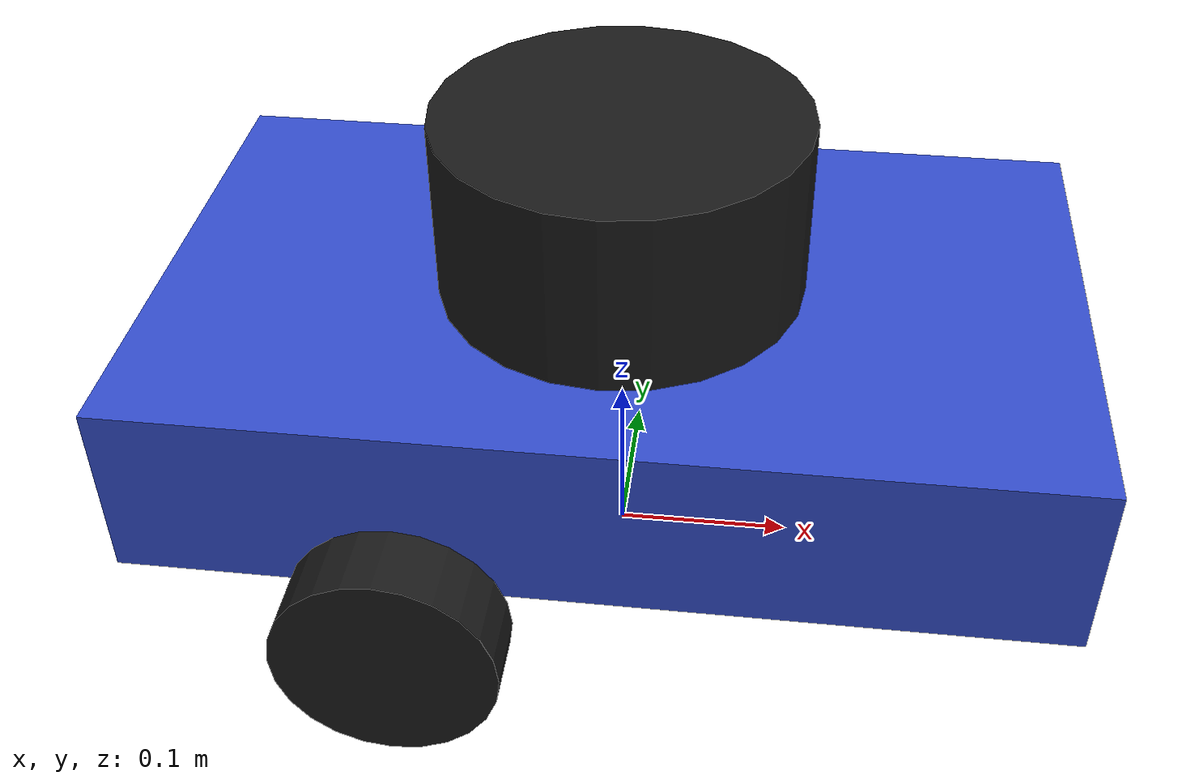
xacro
<?xml version="1.0"?>
<robot xmlns:xacro="http://www.ros.org/wiki/xacro" name="robot">

  <!-- ===== Dimensions from the figure (metres) ===== -->
  <xacro:property name="PI" value="3.14159265359"/>

  <xacro:property name="a"  value="0.50"/>   <!-- body length -->
  <xacro:property name="b"  value="0.10"/>   <!-- body height -->
  <xacro:property name="c"  value="0.30"/>   <!-- body width -->
  <xacro:property name="r"  value="0.06"/>   <!-- wheel and caster radius -->
  <xacro:property name="d"  value="0.04"/>   <!-- wheel thickness -->
  <xacro:property name="s1" value="0.13"/>   <!-- C1 (ground) to C2 (body centre) height -->
  <xacro:property name="s2" value="0.10"/>   <!-- C2 to wheel axle, x distance (behind centre) -->
  <xacro:property name="s3" value="0.15"/>   <!-- C2 to caster, x distance (in front of centre) -->
  <xacro:property name="s4" value="${c/2 + d/2}"/>  <!-- C2 to wheel centre, y distance -->

  <xacro:property name="body_mass"   value="5.0"/>
  <xacro:property name="wheel_mass"  value="0.5"/>
  <xacro:property name="caster_mass" value="0.2"/>

  <!-- ===== Materials ===== -->
  <material name="blue"><color rgba="0.2 0.3 0.8 1.0"/></material>
  <material name="black"><color rgba="0.1 0.1 0.1 1.0"/></material>
  <material name="grey"><color rgba="0.6 0.6 0.6 1.0"/></material>

  <!-- ===== Inertia macros ===== -->
  <xacro:macro name="box_inertia" params="m x y z">
    <inertial>
      <mass value="${m}"/>
      <inertia ixx="${(m/12.0)*(y*y+z*z)}" ixy="0" ixz="0"
               iyy="${(m/12.0)*(x*x+z*z)}" iyz="0"
               izz="${(m/12.0)*(x*x+y*y)}"/>
    </inertial>
  </xacro:macro>

  <xacro:macro name="cylinder_inertia" params="m r h">
    <inertial>
      <mass value="${m}"/>
      <inertia ixx="${(m/12.0)*(3*r*r+h*h)}" ixy="0" ixz="0"
               iyy="${(m/12.0)*(3*r*r+h*h)}" iyz="0"
               izz="${(m/2.0)*r*r}"/>
    </inertial>
  </xacro:macro>

  <xacro:macro name="sphere_inertia" params="m r">
    <inertial>
      <mass value="${m}"/>
      <inertia ixx="${0.4*m*r*r}" ixy="0" ixz="0"
               iyy="${0.4*m*r*r}" iyz="0"
               izz="${0.4*m*r*r}"/>
    </inertial>
  </xacro:macro>

  <!-- ===== C1: ground point below body centre ===== -->
  <link name="base_footprint"/>

  <!-- ===== body_link (C2 is its origin) ===== -->
  <joint name="body_joint" type="fixed">
    <parent link="base_footprint"/>
    <child link="body_link"/>
    <origin xyz="0 0 ${s1}" rpy="0 0 0"/>
  </joint>

  <link name="body_link">
    <visual>
      <geometry><box size="${a} ${c} ${b}"/></geometry>
      <material name="blue"/>
    </visual>
    <collision>
      <geometry><box size="${a} ${c} ${b}"/></geometry>
    </collision>
    <xacro:box_inertia m="${body_mass}" x="${a}" y="${c}" z="${b}"/>
  </link>

  <!-- ===== wheel1_link (C4, side y = -s4) ===== -->
  <link name="wheel1_link">
    <visual>
      <geometry><cylinder radius="${r}" length="${d}"/></geometry>
      <material name="black"/>
    </visual>
    <collision>
      <geometry><cylinder radius="${r}" length="${d}"/></geometry>
    </collision>
    <xacro:cylinder_inertia m="${wheel_mass}" r="${r}" h="${d}"/>
  </link>

  <joint name="wheel1_joint" type="continuous">
    <parent link="body_link"/>
    <child link="wheel1_link"/>
    <origin xyz="${-s2} ${-s4} ${r - s1}" rpy="${PI/2} 0 0"/>
    <axis xyz="0 0 -1"/>
  </joint>

  <!-- ===== wheel2_link (C5, side y = +s4) ===== -->
  <link name="wheel2_link">
    <visual>
      <geometry><cylinder radius="${r}" length="${d}"/></geometry>
      <material name="black"/>
    </visual>
    <collision>
      <geometry><cylinder radius="${r}" length="${d}"/></geometry>
    </collision>
    <xacro:cylinder_inertia m="${wheel_mass}" r="${r}" h="${d}"/>
  </link>

  <joint name="wheel2_joint" type="continuous">
    <parent link="body_link"/>
    <child link="wheel2_link"/>
    <origin xyz="${-s2} ${s4} ${r - s1}" rpy="${-PI/2} 0 0"/>
    <axis xyz="0 0 1"/>
  </joint>

  <!-- ===== caster_link (C3, x = +s3, y = 0) ===== -->
  <link name="caster_link">
    <visual>
      <geometry><sphere radius="${r}"/></geometry>
      <material name="grey"/>
    </visual>
    <collision>
      <geometry><sphere radius="${r}"/></geometry>
    </collision>
    <xacro:sphere_inertia m="${caster_mass}" r="${r}"/>
  </link>

  <joint name="caster_joint" type="fixed">
    <parent link="body_link"/>
    <child link="caster_link"/>
    <origin xyz="${s3} 0 ${r - s1}" rpy="0 0 0"/>
  </joint>

  <joint name="lidar_joint" type="fixed">
    <origin xyz="0.0 0 ${b/2}" rpy="0 0 0"/>
    <parent link="body_link"/>
    <child link="lidar_link"/>
  </joint>

  <link name="lidar_link">
    <visual>
      <origin xyz="0 0 0.05" rpy="0 0 0"/>
      <geometry>
        <cylinder length="0.1" radius="0.1"/>
      </geometry>
      <material name="black"/>
    </visual>

    <collision name="collision">
      <origin xyz="0 0 0.05" rpy="0 0 0"/>
      <geometry>
        <cylinder length="0.1" radius="0.1"/>
      </geometry>
    </collision>

    <xacro:cylinder_inertia m="0.1" r="0.1" h="0.1"/>
  </link>

 <xacro:include filename="$(find mobile_robot)/model/robot.gazebo"/>

</robot>
